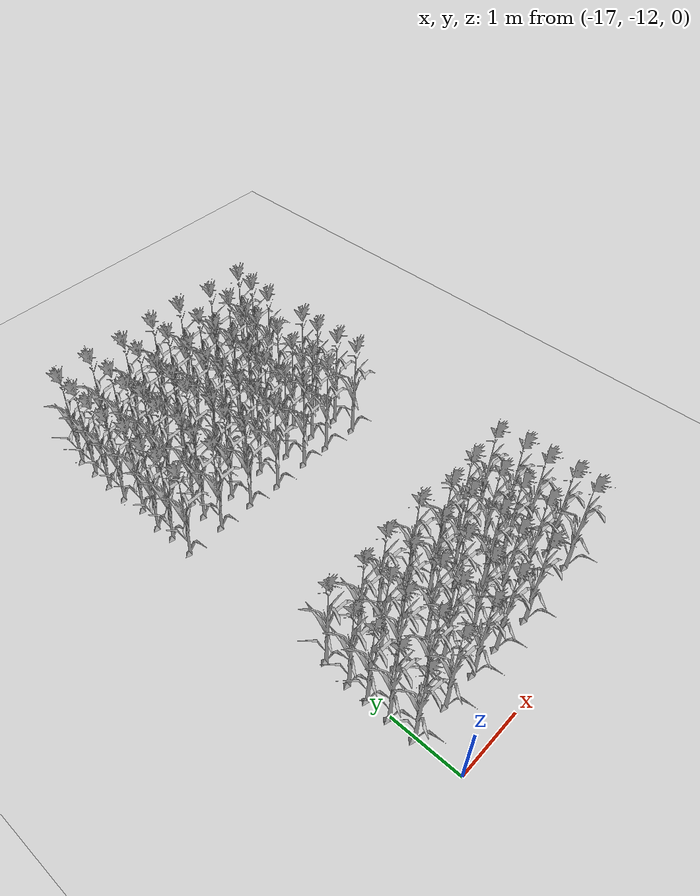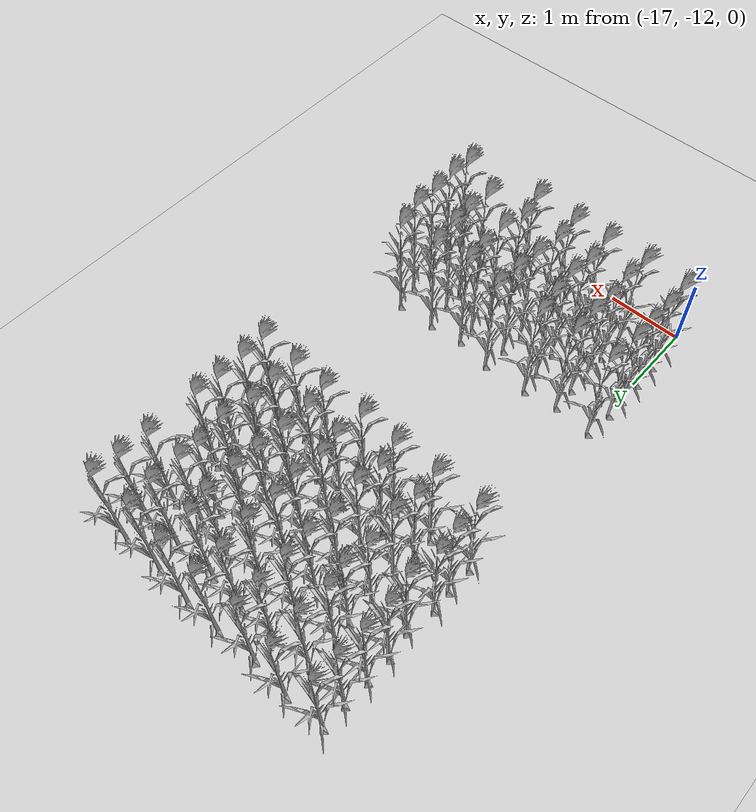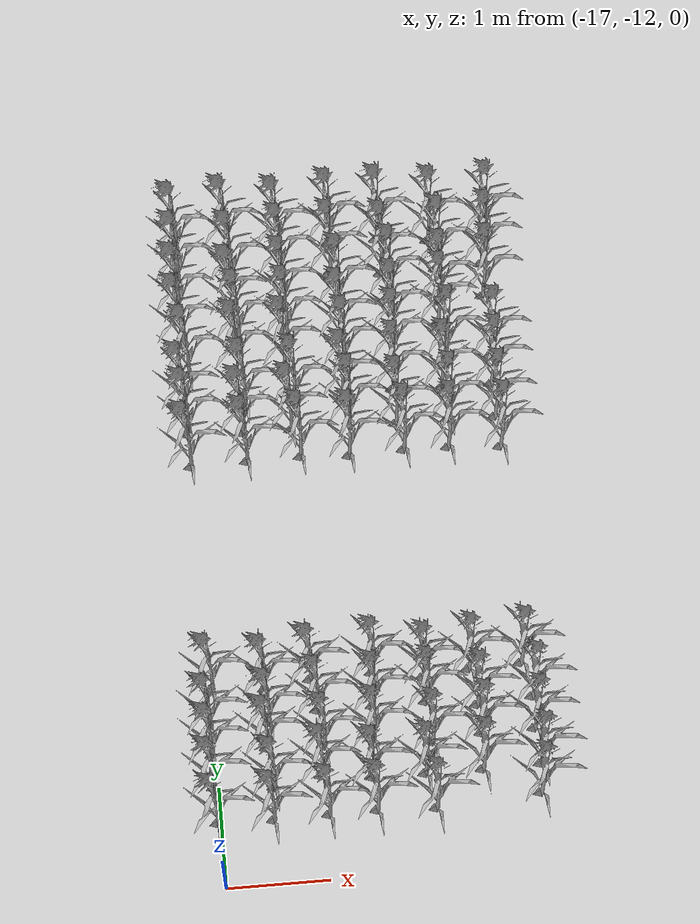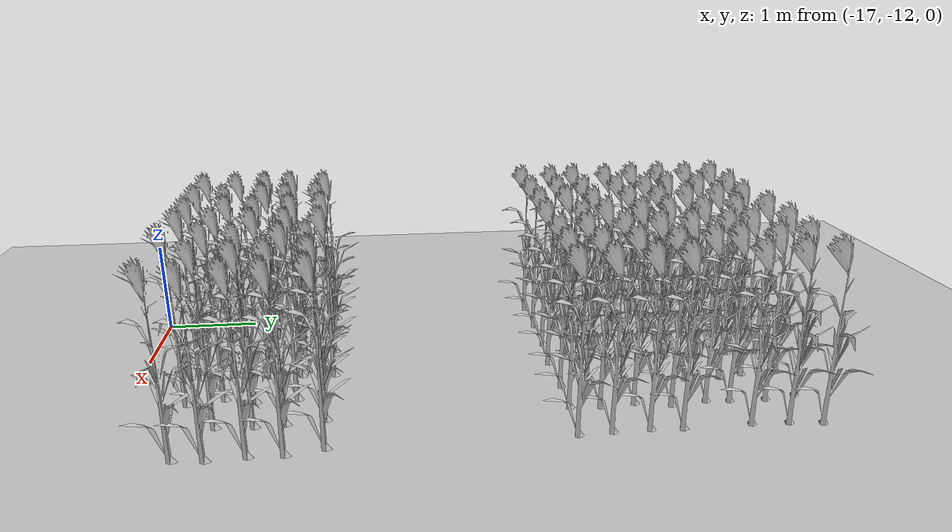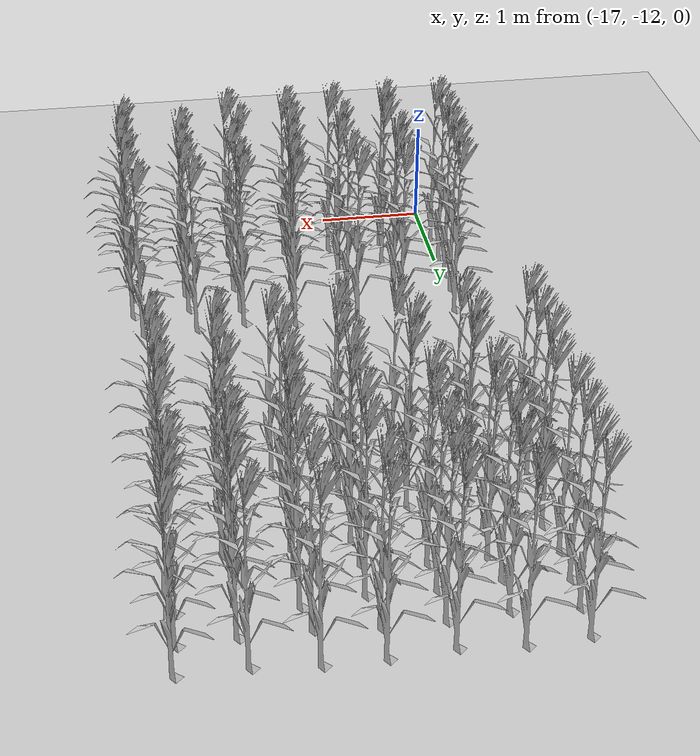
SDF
<sdf version="1.7">
 <world name="farmland_world">
  <model name="ground_plane">
   <static>1</static>
   <link name="link">
    <collision name="collision">
     <geometry><plane><normal>0 0 1</normal><size>40.0 40.0</size></plane></geometry>
     <surface><friction><ode><mu>100</mu><mu2>50</mu2></ode></friction></surface>
    </collision>
    <visual name="visual">
     <cast_shadows>0</cast_shadows>
     <geometry><plane><normal>0 0 1</normal><size>40.0 40.0</size></plane></geometry>
     <material>
      <script><uri>file://media/materials/scripts/gazebo.material</uri><name>Gazebo/Grey</name></script>
     </material>
    </visual>
   </link>
  </model>
  <model name="tree_3_2040">
   <static>1</static>
   <link name="link">
    <collision name="collision">
     <geometry><mesh><uri>model://Corn_low_poly/corn.obj</uri><scale>1 1 1</scale></mesh></geometry>
     <surface><friction><ode><mu>100</mu><mu2>50</mu2></ode></friction></surface>
    </collision>
    <visual name="visual">
     <geometry><mesh><uri>model://Corn_low_poly/corn.obj</uri><scale>1 1 1</scale></mesh></geometry>
    </visual>
   </link>
   <pose>-13.861389295555323 -11.006066772942393 0 0 0 0</pose>
  </model>
  <model name="tree_3_2041">
   <static>1</static>
   <link name="link">
    <collision name="collision">
     <geometry><mesh><uri>model://Corn_low_poly/corn.obj</uri><scale>1 1 1</scale></mesh></geometry>
     <surface><friction><ode><mu>100</mu><mu2>50</mu2></ode></friction></surface>
    </collision>
    <visual name="visual">
     <geometry><mesh><uri>model://Corn_low_poly/corn.obj</uri><scale>1 1 1</scale></mesh></geometry>
    </visual>
   </link>
   <pose>-14.42685267311705 -11.016975568461342 0 0 0 0</pose>
  </model>
  <model name="tree_3_2042">
   <static>1</static>
   <link name="link">
    <collision name="collision">
     <geometry><mesh><uri>model://Corn_low_poly/corn.obj</uri><scale>1 1 1</scale></mesh></geometry>
     <surface><friction><ode><mu>100</mu><mu2>50</mu2></ode></friction></surface>
    </collision>
    <visual name="visual">
     <geometry><mesh><uri>model://Corn_low_poly/corn.obj</uri><scale>1 1 1</scale></mesh></geometry>
    </visual>
   </link>
   <pose>-14.984664853586196 -11.013560077134958 0 0 0 0</pose>
  </model>
  <model name="tree_3_2043">
   <static>1</static>
   <link name="link">
    <collision name="collision">
     <geometry><mesh><uri>model://Corn_low_poly/corn.obj</uri><scale>1 1 1</scale></mesh></geometry>
     <surface><friction><ode><mu>100</mu><mu2>50</mu2></ode></friction></surface>
    </collision>
    <visual name="visual">
     <geometry><mesh><uri>model://Corn_low_poly/corn.obj</uri><scale>1 1 1</scale></mesh></geometry>
    </visual>
   </link>
   <pose>-15.502978542331613 -11.006497961540857 0 0 0 0</pose>
  </model>
  <model name="tree_3_2044">
   <static>1</static>
   <link name="link">
    <collision name="collision">
     <geometry><mesh><uri>model://Corn_low_poly/corn.obj</uri><scale>1 1 1</scale></mesh></geometry>
     <surface><friction><ode><mu>100</mu><mu2>50</mu2></ode></friction></surface>
    </collision>
    <visual name="visual">
     <geometry><mesh><uri>model://Corn_low_poly/corn.obj</uri><scale>1 1 1</scale></mesh></geometry>
    </visual>
   </link>
   <pose>-15.985721734069857 -10.952990888706326 0 0 0 0</pose>
  </model>
  <model name="tree_3_2045">
   <static>1</static>
   <link name="link">
    <collision name="collision">
     <geometry><mesh><uri>model://Corn_low_poly/corn.obj</uri><scale>1 1 1</scale></mesh></geometry>
     <surface><friction><ode><mu>100</mu><mu2>50</mu2></ode></friction></surface>
    </collision>
    <visual name="visual">
     <geometry><mesh><uri>model://Corn_low_poly/corn.obj</uri><scale>1 1 1</scale></mesh></geometry>
    </visual>
   </link>
   <pose>-16.44725447129191 -11.033640916818305 0 0 0 0</pose>
  </model>
  <model name="tree_3_2046">
   <static>1</static>
   <link name="link">
    <collision name="collision">
     <geometry><mesh><uri>model://Corn_low_poly/corn.obj</uri><scale>1 1 1</scale></mesh></geometry>
     <surface><friction><ode><mu>100</mu><mu2>50</mu2></ode></friction></surface>
    </collision>
    <visual name="visual">
     <geometry><mesh><uri>model://Corn_low_poly/corn.obj</uri><scale>1 1 1</scale></mesh></geometry>
    </visual>
   </link>
   <pose>-17.028249268814733 -10.988336016532802 0 0 0 0</pose>
  </model>
  <model name="tree_3_2074">
   <static>1</static>
   <link name="link">
    <collision name="collision">
     <geometry><mesh><uri>model://Corn_low_poly/corn.obj</uri><scale>1 1 1</scale></mesh></geometry>
     <surface><friction><ode><mu>100</mu><mu2>50</mu2></ode></friction></surface>
    </collision>
    <visual name="visual">
     <geometry><mesh><uri>model://Corn_low_poly/corn.obj</uri><scale>1 1 1</scale></mesh></geometry>
    </visual>
   </link>
   <pose>-13.890666893859695 -11.295610780901203 0 0 0 0</pose>
  </model>
  <model name="tree_3_2076">
   <static>1</static>
   <link name="link">
    <collision name="collision">
     <geometry><mesh><uri>model://Corn_low_poly/corn.obj</uri><scale>1 1 1</scale></mesh></geometry>
     <surface><friction><ode><mu>100</mu><mu2>50</mu2></ode></friction></surface>
    </collision>
    <visual name="visual">
     <geometry><mesh><uri>model://Corn_low_poly/corn.obj</uri><scale>1 1 1</scale></mesh></geometry>
    </visual>
   </link>
   <pose>-14.907526392758443 -11.36635602244949 0 0 0 0</pose>
  </model>
  <model name="tree_3_2077">
   <static>1</static>
   <link name="link">
    <collision name="collision">
     <geometry><mesh><uri>model://Corn_low_poly/corn.obj</uri><scale>1 1 1</scale></mesh></geometry>
     <surface><friction><ode><mu>100</mu><mu2>50</mu2></ode></friction></surface>
    </collision>
    <visual name="visual">
     <geometry><mesh><uri>model://Corn_low_poly/corn.obj</uri><scale>1 1 1</scale></mesh></geometry>
    </visual>
   </link>
   <pose>-15.478668211523798 -11.33993258271726 0 0 0 0</pose>
  </model>
  <model name="tree_3_2078">
   <static>1</static>
   <link name="link">
    <collision name="collision">
     <geometry><mesh><uri>model://Corn_low_poly/corn.obj</uri><scale>1 1 1</scale></mesh></geometry>
     <surface><friction><ode><mu>100</mu><mu2>50</mu2></ode></friction></surface>
    </collision>
    <visual name="visual">
     <geometry><mesh><uri>model://Corn_low_poly/corn.obj</uri><scale>1 1 1</scale></mesh></geometry>
    </visual>
   </link>
   <pose>-15.94294663232169 -11.345750835775325 0 0 0 0</pose>
  </model>
  <model name="tree_3_2079">
   <static>1</static>
   <link name="link">
    <collision name="collision">
     <geometry><mesh><uri>model://Corn_low_poly/corn.obj</uri><scale>1 1 1</scale></mesh></geometry>
     <surface><friction><ode><mu>100</mu><mu2>50</mu2></ode></friction></surface>
    </collision>
    <visual name="visual">
     <geometry><mesh><uri>model://Corn_low_poly/corn.obj</uri><scale>1 1 1</scale></mesh></geometry>
    </visual>
   </link>
   <pose>-16.47678042322141 -11.355880029867416 0 0 0 0</pose>
  </model>
  <model name="tree_3_2080">
   <static>1</static>
   <link name="link">
    <collision name="collision">
     <geometry><mesh><uri>model://Corn_low_poly/corn.obj</uri><scale>1 1 1</scale></mesh></geometry>
     <surface><friction><ode><mu>100</mu><mu2>50</mu2></ode></friction></surface>
    </collision>
    <visual name="visual">
     <geometry><mesh><uri>model://Corn_low_poly/corn.obj</uri><scale>1 1 1</scale></mesh></geometry>
    </visual>
   </link>
   <pose>-17.019537868486335 -11.343949888093178 0 0 0 0</pose>
  </model>
  <model name="tree_3_2142">
   <static>1</static>
   <link name="link">
    <collision name="collision">
     <geometry><mesh><uri>model://Corn_low_poly/corn.obj</uri><scale>1 1 1</scale></mesh></geometry>
     <surface><friction><ode><mu>100</mu><mu2>50</mu2></ode></friction></surface>
    </collision>
    <visual name="visual">
     <geometry><mesh><uri>model://Corn_low_poly/corn.obj</uri><scale>1 1 1</scale></mesh></geometry>
    </visual>
   </link>
   <pose>-13.952698420597734 -9.971858872984631 0 0 0 0</pose>
  </model>
  <model name="tree_3_2143">
   <static>1</static>
   <link name="link">
    <collision name="collision">
     <geometry><mesh><uri>model://Corn_low_poly/corn.obj</uri><scale>1 1 1</scale></mesh></geometry>
     <surface><friction><ode><mu>100</mu><mu2>50</mu2></ode></friction></surface>
    </collision>
    <visual name="visual">
     <geometry><mesh><uri>model://Corn_low_poly/corn.obj</uri><scale>1 1 1</scale></mesh></geometry>
    </visual>
   </link>
   <pose>-14.466243059160288 -9.991863412689252 0 0 0 0</pose>
  </model>
  <model name="tree_3_2144">
   <static>1</static>
   <link name="link">
    <collision name="collision">
     <geometry><mesh><uri>model://Corn_low_poly/corn.obj</uri><scale>1 1 1</scale></mesh></geometry>
     <surface><friction><ode><mu>100</mu><mu2>50</mu2></ode></friction></surface>
    </collision>
    <visual name="visual">
     <geometry><mesh><uri>model://Corn_low_poly/corn.obj</uri><scale>1 1 1</scale></mesh></geometry>
    </visual>
   </link>
   <pose>-14.924871572818496 -10.0414902841096 0 0 0 0</pose>
  </model>
  <model name="tree_3_2145">
   <static>1</static>
   <link name="link">
    <collision name="collision">
     <geometry><mesh><uri>model://Corn_low_poly/corn.obj</uri><scale>1 1 1</scale></mesh></geometry>
     <surface><friction><ode><mu>100</mu><mu2>50</mu2></ode></friction></surface>
    </collision>
    <visual name="visual">
     <geometry><mesh><uri>model://Corn_low_poly/corn.obj</uri><scale>1 1 1</scale></mesh></geometry>
    </visual>
   </link>
   <pose>-15.413451948861685 -9.95397579605954 0 0 0 0</pose>
  </model>
  <model name="tree_3_2146">
   <static>1</static>
   <link name="link">
    <collision name="collision">
     <geometry><mesh><uri>model://Corn_low_poly/corn.obj</uri><scale>1 1 1</scale></mesh></geometry>
     <surface><friction><ode><mu>100</mu><mu2>50</mu2></ode></friction></surface>
    </collision>
    <visual name="visual">
     <geometry><mesh><uri>model://Corn_low_poly/corn.obj</uri><scale>1 1 1</scale></mesh></geometry>
    </visual>
   </link>
   <pose>-16.019647574451376 -9.970663126248787 0 0 0 0</pose>
  </model>
  <model name="tree_3_2147">
   <static>1</static>
   <link name="link">
    <collision name="collision">
     <geometry><mesh><uri>model://Corn_low_poly/corn.obj</uri><scale>1 1 1</scale></mesh></geometry>
     <surface><friction><ode><mu>100</mu><mu2>50</mu2></ode></friction></surface>
    </collision>
    <visual name="visual">
     <geometry><mesh><uri>model://Corn_low_poly/corn.obj</uri><scale>1 1 1</scale></mesh></geometry>
    </visual>
   </link>
   <pose>-16.467114263920536 -10.036933781445951 0 0 0 0</pose>
  </model>
  <model name="tree_3_2148">
   <static>1</static>
   <link name="link">
    <collision name="collision">
     <geometry><mesh><uri>model://Corn_low_poly/corn.obj</uri><scale>1 1 1</scale></mesh></geometry>
     <surface><friction><ode><mu>100</mu><mu2>50</mu2></ode></friction></surface>
    </collision>
    <visual name="visual">
     <geometry><mesh><uri>model://Corn_low_poly/corn.obj</uri><scale>1 1 1</scale></mesh></geometry>
    </visual>
   </link>
   <pose>-16.97859842859563 -9.989118121141257 0 0 0 0</pose>
  </model>
  <model name="tree_3_2176">
   <static>1</static>
   <link name="link">
    <collision name="collision">
     <geometry><mesh><uri>model://Corn_low_poly/corn.obj</uri><scale>1 1 1</scale></mesh></geometry>
     <surface><friction><ode><mu>100</mu><mu2>50</mu2></ode></friction></surface>
    </collision>
    <visual name="visual">
     <geometry><mesh><uri>model://Corn_low_poly/corn.obj</uri><scale>1 1 1</scale></mesh></geometry>
    </visual>
   </link>
   <pose>-13.874962286019914 -10.322169741107665 0 0 0 0</pose>
  </model>
  <model name="tree_3_2177">
   <static>1</static>
   <link name="link">
    <collision name="collision">
     <geometry><mesh><uri>model://Corn_low_poly/corn.obj</uri><scale>1 1 1</scale></mesh></geometry>
     <surface><friction><ode><mu>100</mu><mu2>50</mu2></ode></friction></surface>
    </collision>
    <visual name="visual">
     <geometry><mesh><uri>model://Corn_low_poly/corn.obj</uri><scale>1 1 1</scale></mesh></geometry>
    </visual>
   </link>
   <pose>-14.420085120026496 -10.362983866776126 0 0 0 0</pose>
  </model>
  <model name="tree_3_2178">
   <static>1</static>
   <link name="link">
    <collision name="collision">
     <geometry><mesh><uri>model://Corn_low_poly/corn.obj</uri><scale>1 1 1</scale></mesh></geometry>
     <surface><friction><ode><mu>100</mu><mu2>50</mu2></ode></friction></surface>
    </collision>
    <visual name="visual">
     <geometry><mesh><uri>model://Corn_low_poly/corn.obj</uri><scale>1 1 1</scale></mesh></geometry>
    </visual>
   </link>
   <pose>-14.913818616838142 -10.289693840933245 0 0 0 0</pose>
  </model>
  <model name="tree_3_2179">
   <static>1</static>
   <link name="link">
    <collision name="collision">
     <geometry><mesh><uri>model://Corn_low_poly/corn.obj</uri><scale>1 1 1</scale></mesh></geometry>
     <surface><friction><ode><mu>100</mu><mu2>50</mu2></ode></friction></surface>
    </collision>
    <visual name="visual">
     <geometry><mesh><uri>model://Corn_low_poly/corn.obj</uri><scale>1 1 1</scale></mesh></geometry>
    </visual>
   </link>
   <pose>-15.43314286012108 -10.292563843909587 0 0 0 0</pose>
  </model>
  <model name="tree_3_2180">
   <static>1</static>
   <link name="link">
    <collision name="collision">
     <geometry><mesh><uri>model://Corn_low_poly/corn.obj</uri><scale>1 1 1</scale></mesh></geometry>
     <surface><friction><ode><mu>100</mu><mu2>50</mu2></ode></friction></surface>
    </collision>
    <visual name="visual">
     <geometry><mesh><uri>model://Corn_low_poly/corn.obj</uri><scale>1 1 1</scale></mesh></geometry>
    </visual>
   </link>
   <pose>-15.974807561934412 -10.288419714242432 0 0 0 0</pose>
  </model>
  <model name="tree_3_2181">
   <static>1</static>
   <link name="link">
    <collision name="collision">
     <geometry><mesh><uri>model://Corn_low_poly/corn.obj</uri><scale>1 1 1</scale></mesh></geometry>
     <surface><friction><ode><mu>100</mu><mu2>50</mu2></ode></friction></surface>
    </collision>
    <visual name="visual">
     <geometry><mesh><uri>model://Corn_low_poly/corn.obj</uri><scale>1 1 1</scale></mesh></geometry>
    </visual>
   </link>
   <pose>-16.453091820413245 -10.372819391750468 0 0 0 0</pose>
  </model>
  <model name="tree_3_2182">
   <static>1</static>
   <link name="link">
    <collision name="collision">
     <geometry><mesh><uri>model://Corn_low_poly/corn.obj</uri><scale>1 1 1</scale></mesh></geometry>
     <surface><friction><ode><mu>100</mu><mu2>50</mu2></ode></friction></surface>
    </collision>
    <visual name="visual">
     <geometry><mesh><uri>model://Corn_low_poly/corn.obj</uri><scale>1 1 1</scale></mesh></geometry>
    </visual>
   </link>
   <pose>-17.020518568777618 -10.37951647128778 0 0 0 0</pose>
  </model>
  <model name="tree_3_2210">
   <static>1</static>
   <link name="link">
    <collision name="collision">
     <geometry><mesh><uri>model://Corn_low_poly/corn.obj</uri><scale>1 1 1</scale></mesh></geometry>
     <surface><friction><ode><mu>100</mu><mu2>50</mu2></ode></friction></surface>
    </collision>
    <visual name="visual">
     <geometry><mesh><uri>model://Corn_low_poly/corn.obj</uri><scale>1 1 1</scale></mesh></geometry>
    </visual>
   </link>
   <pose>-13.887006472637538 -10.646372009033481 0 0 0 0</pose>
  </model>
  <model name="tree_3_2211">
   <static>1</static>
   <link name="link">
    <collision name="collision">
     <geometry><mesh><uri>model://Corn_low_poly/corn.obj</uri><scale>1 1 1</scale></mesh></geometry>
     <surface><friction><ode><mu>100</mu><mu2>50</mu2></ode></friction></surface>
    </collision>
    <visual name="visual">
     <geometry><mesh><uri>model://Corn_low_poly/corn.obj</uri><scale>1 1 1</scale></mesh></geometry>
    </visual>
   </link>
   <pose>-14.403965079375258 -10.653030346364648 0 0 0 0</pose>
  </model>
  <model name="tree_3_2212">
   <static>1</static>
   <link name="link">
    <collision name="collision">
     <geometry><mesh><uri>model://Corn_low_poly/corn.obj</uri><scale>1 1 1</scale></mesh></geometry>
     <surface><friction><ode><mu>100</mu><mu2>50</mu2></ode></friction></surface>
    </collision>
    <visual name="visual">
     <geometry><mesh><uri>model://Corn_low_poly/corn.obj</uri><scale>1 1 1</scale></mesh></geometry>
    </visual>
   </link>
   <pose>-14.890749612557908 -10.703517361910519 0 0 0 0</pose>
  </model>
  <model name="tree_3_2213">
   <static>1</static>
   <link name="link">
    <collision name="collision">
     <geometry><mesh><uri>model://Corn_low_poly/corn.obj</uri><scale>1 1 1</scale></mesh></geometry>
     <surface><friction><ode><mu>100</mu><mu2>50</mu2></ode></friction></surface>
    </collision>
    <visual name="visual">
     <geometry><mesh><uri>model://Corn_low_poly/corn.obj</uri><scale>1 1 1</scale></mesh></geometry>
    </visual>
   </link>
   <pose>-15.45566366732271 -10.624394285770006 0 0 0 0</pose>
  </model>
  <model name="tree_3_2214">
   <static>1</static>
   <link name="link">
    <collision name="collision">
     <geometry><mesh><uri>model://Corn_low_poly/corn.obj</uri><scale>1 1 1</scale></mesh></geometry>
     <surface><friction><ode><mu>100</mu><mu2>50</mu2></ode></friction></surface>
    </collision>
    <visual name="visual">
     <geometry><mesh><uri>model://Corn_low_poly/corn.obj</uri><scale>1 1 1</scale></mesh></geometry>
    </visual>
   </link>
   <pose>-15.937108696873544 -10.65629357558891 0 0 0 0</pose>
  </model>
  <model name="tree_3_2215">
   <static>1</static>
   <link name="link">
    <collision name="collision">
     <geometry><mesh><uri>model://Corn_low_poly/corn.obj</uri><scale>1 1 1</scale></mesh></geometry>
     <surface><friction><ode><mu>100</mu><mu2>50</mu2></ode></friction></surface>
    </collision>
    <visual name="visual">
     <geometry><mesh><uri>model://Corn_low_poly/corn.obj</uri><scale>1 1 1</scale></mesh></geometry>
    </visual>
   </link>
   <pose>-16.49067657089154 -10.63251876744421 0 0 0 0</pose>
  </model>
  <model name="tree_3_2216">
   <static>1</static>
   <link name="link">
    <collision name="collision">
     <geometry><mesh><uri>model://Corn_low_poly/corn.obj</uri><scale>1 1 1</scale></mesh></geometry>
     <surface><friction><ode><mu>100</mu><mu2>50</mu2></ode></friction></surface>
    </collision>
    <visual name="visual">
     <geometry><mesh><uri>model://Corn_low_poly/corn.obj</uri><scale>1 1 1</scale></mesh></geometry>
    </visual>
   </link>
   <pose>-17.023659672779168 -10.663287181631599 0 0 0 0</pose>
  </model>
  <model name="tree_3_2244">
   <static>1</static>
   <link name="link">
    <collision name="collision">
     <geometry><mesh><uri>model://Corn_low_poly/corn.obj</uri><scale>1 1 1</scale></mesh></geometry>
     <surface><friction><ode><mu>100</mu><mu2>50</mu2></ode></friction></surface>
    </collision>
    <visual name="visual">
     <geometry><mesh><uri>model://Corn_low_poly/corn.obj</uri><scale>1 1 1</scale></mesh></geometry>
    </visual>
   </link>
   <pose>-13.951164779646795 -6.993861504148268 0 0 0 0</pose>
  </model>
  <model name="tree_3_2245">
   <static>1</static>
   <link name="link">
    <collision name="collision">
     <geometry><mesh><uri>model://Corn_low_poly/corn.obj</uri><scale>1 1 1</scale></mesh></geometry>
     <surface><friction><ode><mu>100</mu><mu2>50</mu2></ode></friction></surface>
    </collision>
    <visual name="visual">
     <geometry><mesh><uri>model://Corn_low_poly/corn.obj</uri><scale>1 1 1</scale></mesh></geometry>
    </visual>
   </link>
   <pose>-14.456321078453394 -6.99764469174802 0 0 0 0</pose>
  </model>
  <model name="tree_3_2246">
   <static>1</static>
   <link name="link">
    <collision name="collision">
     <geometry><mesh><uri>model://Corn_low_poly/corn.obj</uri><scale>1 1 1</scale></mesh></geometry>
     <surface><friction><ode><mu>100</mu><mu2>50</mu2></ode></friction></surface>
    </collision>
    <visual name="visual">
     <geometry><mesh><uri>model://Corn_low_poly/corn.obj</uri><scale>1 1 1</scale></mesh></geometry>
    </visual>
   </link>
   <pose>-14.947225602323204 -6.973067761409545 0 0 0 0</pose>
  </model>
  <model name="tree_3_2247">
   <static>1</static>
   <link name="link">
    <collision name="collision">
     <geometry><mesh><uri>model://Corn_low_poly/corn.obj</uri><scale>1 1 1</scale></mesh></geometry>
     <surface><friction><ode><mu>100</mu><mu2>50</mu2></ode></friction></surface>
    </collision>
    <visual name="visual">
     <geometry><mesh><uri>model://Corn_low_poly/corn.obj</uri><scale>1 1 1</scale></mesh></geometry>
    </visual>
   </link>
   <pose>-15.461794139422274 -7.024735371072639 0 0 0 0</pose>
  </model>
  <model name="tree_3_2248">
   <static>1</static>
   <link name="link">
    <collision name="collision">
     <geometry><mesh><uri>model://Corn_low_poly/corn.obj</uri><scale>1 1 1</scale></mesh></geometry>
     <surface><friction><ode><mu>100</mu><mu2>50</mu2></ode></friction></surface>
    </collision>
    <visual name="visual">
     <geometry><mesh><uri>model://Corn_low_poly/corn.obj</uri><scale>1 1 1</scale></mesh></geometry>
    </visual>
   </link>
   <pose>-15.942998863355749 -7.042202841323702 0 0 0 0</pose>
  </model>
  <model name="tree_3_2249">
   <static>1</static>
   <link name="link">
    <collision name="collision">
     <geometry><mesh><uri>model://Corn_low_poly/corn.obj</uri><scale>1 1 1</scale></mesh></geometry>
     <surface><friction><ode><mu>100</mu><mu2>50</mu2></ode></friction></surface>
    </collision>
    <visual name="visual">
     <geometry><mesh><uri>model://Corn_low_poly/corn.obj</uri><scale>1 1 1</scale></mesh></geometry>
    </visual>
   </link>
   <pose>-16.441357648605127 -7.03659596464226 0 0 0 0</pose>
  </model>
  <model name="tree_3_2250">
   <static>1</static>
   <link name="link">
    <collision name="collision">
     <geometry><mesh><uri>model://Corn_low_poly/corn.obj</uri><scale>1 1 1</scale></mesh></geometry>
     <surface><friction><ode><mu>100</mu><mu2>50</mu2></ode></friction></surface>
    </collision>
    <visual name="visual">
     <geometry><mesh><uri>model://Corn_low_poly/corn.obj</uri><scale>1 1 1</scale></mesh></geometry>
    </visual>
   </link>
   <pose>-17.047193564578695 -7.019605284753722 0 0 0 0</pose>
  </model>
  <model name="tree_3_2278">
   <static>1</static>
   <link name="link">
    <collision name="collision">
     <geometry><mesh><uri>model://Corn_low_poly/corn.obj</uri><scale>1 1 1</scale></mesh></geometry>
     <surface><friction><ode><mu>100</mu><mu2>50</mu2></ode></friction></surface>
    </collision>
    <visual name="visual">
     <geometry><mesh><uri>model://Corn_low_poly/corn.obj</uri><scale>1 1 1</scale></mesh></geometry>
    </visual>
   </link>
   <pose>-13.948183304319729 -7.354694077393018 0 0 0 0</pose>
  </model>
  <model name="tree_3_2279">
   <static>1</static>
   <link name="link">
    <collision name="collision">
     <geometry><mesh><uri>model://Corn_low_poly/corn.obj</uri><scale>1 1 1</scale></mesh></geometry>
     <surface><friction><ode><mu>100</mu><mu2>50</mu2></ode></friction></surface>
    </collision>
    <visual name="visual">
     <geometry><mesh><uri>model://Corn_low_poly/corn.obj</uri><scale>1 1 1</scale></mesh></geometry>
    </visual>
   </link>
   <pose>-14.423388080308088 -7.342992412397734 0 0 0 0</pose>
  </model>
  <model name="tree_3_2280">
   <static>1</static>
   <link name="link">
    <collision name="collision">
     <geometry><mesh><uri>model://Corn_low_poly/corn.obj</uri><scale>1 1 1</scale></mesh></geometry>
     <surface><friction><ode><mu>100</mu><mu2>50</mu2></ode></friction></surface>
    </collision>
    <visual name="visual">
     <geometry><mesh><uri>model://Corn_low_poly/corn.obj</uri><scale>1 1 1</scale></mesh></geometry>
    </visual>
   </link>
   <pose>-14.948490487080253 -7.346868445730922 0 0 0 0</pose>
  </model>
  <model name="tree_3_2281">
   <static>1</static>
   <link name="link">
    <collision name="collision">
     <geometry><mesh><uri>model://Corn_low_poly/corn.obj</uri><scale>1 1 1</scale></mesh></geometry>
     <surface><friction><ode><mu>100</mu><mu2>50</mu2></ode></friction></surface>
    </collision>
    <visual name="visual">
     <geometry><mesh><uri>model://Corn_low_poly/corn.obj</uri><scale>1 1 1</scale></mesh></geometry>
    </visual>
   </link>
   <pose>-15.413272612857916 -7.287812258975569 0 0 0 0</pose>
  </model>
  <model name="tree_3_2282">
   <static>1</static>
   <link name="link">
    <collision name="collision">
     <geometry><mesh><uri>model://Corn_low_poly/corn.obj</uri><scale>1 1 1</scale></mesh></geometry>
     <surface><friction><ode><mu>100</mu><mu2>50</mu2></ode></friction></surface>
    </collision>
    <visual name="visual">
     <geometry><mesh><uri>model://Corn_low_poly/corn.obj</uri><scale>1 1 1</scale></mesh></geometry>
    </visual>
   </link>
   <pose>-16.004679489134556 -7.329177109131712 0 0 0 0</pose>
  </model>
  <model name="tree_3_2283">
   <static>1</static>
   <link name="link">
    <collision name="collision">
     <geometry><mesh><uri>model://Corn_low_poly/corn.obj</uri><scale>1 1 1</scale></mesh></geometry>
     <surface><friction><ode><mu>100</mu><mu2>50</mu2></ode></friction></surface>
    </collision>
    <visual name="visual">
     <geometry><mesh><uri>model://Corn_low_poly/corn.obj</uri><scale>1 1 1</scale></mesh></geometry>
    </visual>
   </link>
   <pose>-16.4964703185952 -7.31958642711908 0 0 0 0</pose>
  </model>
  <model name="tree_3_2284">
   <static>1</static>
   <link name="link">
    <collision name="collision">
     <geometry><mesh><uri>model://Corn_low_poly/corn.obj</uri><scale>1 1 1</scale></mesh></geometry>
     <surface><friction><ode><mu>100</mu><mu2>50</mu2></ode></friction></surface>
    </collision>
    <visual name="visual">
     <geometry><mesh><uri>model://Corn_low_poly/corn.obj</uri><scale>1 1 1</scale></mesh></geometry>
    </visual>
   </link>
   <pose>-17.023194866972926 -7.295358356197001 0 0 0 0</pose>
  </model>
  <model name="tree_3_2312">
   <static>1</static>
   <link name="link">
    <collision name="collision">
     <geometry><mesh><uri>model://Corn_low_poly/corn.obj</uri><scale>1 1 1</scale></mesh></geometry>
     <surface><friction><ode><mu>100</mu><mu2>50</mu2></ode></friction></surface>
    </collision>
    <visual name="visual">
     <geometry><mesh><uri>model://Corn_low_poly/corn.obj</uri><scale>1 1 1</scale></mesh></geometry>
    </visual>
   </link>
   <pose>-13.926505014400165 -7.682673740150251 0 0 0 0</pose>
  </model>
  <model name="tree_3_2313">
   <static>1</static>
   <link name="link">
    <collision name="collision">
     <geometry><mesh><uri>model://Corn_low_poly/corn.obj</uri><scale>1 1 1</scale></mesh></geometry>
     <surface><friction><ode><mu>100</mu><mu2>50</mu2></ode></friction></surface>
    </collision>
    <visual name="visual">
     <geometry><mesh><uri>model://Corn_low_poly/corn.obj</uri><scale>1 1 1</scale></mesh></geometry>
    </visual>
   </link>
   <pose>-14.448147626754993 -7.646428276970557 0 0 0 0</pose>
  </model>
  <model name="tree_3_2314">
   <static>1</static>
   <link name="link">
    <collision name="collision">
     <geometry><mesh><uri>model://Corn_low_poly/corn.obj</uri><scale>1 1 1</scale></mesh></geometry>
     <surface><friction><ode><mu>100</mu><mu2>50</mu2></ode></friction></surface>
    </collision>
    <visual name="visual">
     <geometry><mesh><uri>model://Corn_low_poly/corn.obj</uri><scale>1 1 1</scale></mesh></geometry>
    </visual>
   </link>
   <pose>-14.895181479416376 -7.636647580505354 0 0 0 0</pose>
  </model>
  <model name="tree_3_2315">
   <static>1</static>
   <link name="link">
    <collision name="collision">
     <geometry><mesh><uri>model://Corn_low_poly/corn.obj</uri><scale>1 1 1</scale></mesh></geometry>
     <surface><friction><ode><mu>100</mu><mu2>50</mu2></ode></friction></surface>
    </collision>
    <visual name="visual">
     <geometry><mesh><uri>model://Corn_low_poly/corn.obj</uri><scale>1 1 1</scale></mesh></geometry>
    </visual>
   </link>
   <pose>-15.443786971431432 -7.656376302658207 0 0 0 0</pose>
  </model>
  <model name="tree_3_2316">
   <static>1</static>
   <link name="link">
    <collision name="collision">
     <geometry><mesh><uri>model://Corn_low_poly/corn.obj</uri><scale>1 1 1</scale></mesh></geometry>
     <surface><friction><ode><mu>100</mu><mu2>50</mu2></ode></friction></surface>
    </collision>
    <visual name="visual">
     <geometry><mesh><uri>model://Corn_low_poly/corn.obj</uri><scale>1 1 1</scale></mesh></geometry>
    </visual>
   </link>
   <pose>-15.92885665766973 -7.626496955636234 0 0 0 0</pose>
  </model>
  <model name="tree_3_2317">
   <static>1</static>
   <link name="link">
    <collision name="collision">
     <geometry><mesh><uri>model://Corn_low_poly/corn.obj</uri><scale>1 1 1</scale></mesh></geometry>
     <surface><friction><ode><mu>100</mu><mu2>50</mu2></ode></friction></surface>
    </collision>
    <visual name="visual">
     <geometry><mesh><uri>model://Corn_low_poly/corn.obj</uri><scale>1 1 1</scale></mesh></geometry>
    </visual>
   </link>
   <pose>-16.46916230907322 -7.631535219202401 0 0 0 0</pose>
  </model>
  <model name="tree_3_2318">
   <static>1</static>
   <link name="link">
    <collision name="collision">
     <geometry><mesh><uri>model://Corn_low_poly/corn.obj</uri><scale>1 1 1</scale></mesh></geometry>
     <surface><friction><ode><mu>100</mu><mu2>50</mu2></ode></friction></surface>
    </collision>
    <visual name="visual">
     <geometry><mesh><uri>model://Corn_low_poly/corn.obj</uri><scale>1 1 1</scale></mesh></geometry>
    </visual>
   </link>
   <pose>-17.02942639471608 -7.643782216485686 0 0 0 0</pose>
  </model>
  <model name="tree_3_2346">
   <static>1</static>
   <link name="link">
    <collision name="collision">
     <geometry><mesh><uri>model://Corn_low_poly/corn.obj</uri><scale>1 1 1</scale></mesh></geometry>
     <surface><friction><ode><mu>100</mu><mu2>50</mu2></ode></friction></surface>
    </collision>
    <visual name="visual">
     <geometry><mesh><uri>model://Corn_low_poly/corn.obj</uri><scale>1 1 1</scale></mesh></geometry>
    </visual>
   </link>
   <pose>-13.94548014542636 -6.018164438550421 0 0 0 0</pose>
  </model>
  <model name="tree_3_2347">
   <static>1</static>
   <link name="link">
    <collision name="collision">
     <geometry><mesh><uri>model://Corn_low_poly/corn.obj</uri><scale>1 1 1</scale></mesh></geometry>
     <surface><friction><ode><mu>100</mu><mu2>50</mu2></ode></friction></surface>
    </collision>
    <visual name="visual">
     <geometry><mesh><uri>model://Corn_low_poly/corn.obj</uri><scale>1 1 1</scale></mesh></geometry>
    </visual>
   </link>
   <pose>-14.40382870695632 -6.044253252727785 0 0 0 0</pose>
  </model>
  <model name="tree_3_2348">
   <static>1</static>
   <link name="link">
    <collision name="collision">
     <geometry><mesh><uri>model://Corn_low_poly/corn.obj</uri><scale>1 1 1</scale></mesh></geometry>
     <surface><friction><ode><mu>100</mu><mu2>50</mu2></ode></friction></surface>
    </collision>
    <visual name="visual">
     <geometry><mesh><uri>model://Corn_low_poly/corn.obj</uri><scale>1 1 1</scale></mesh></geometry>
    </visual>
   </link>
   <pose>-14.903863735370297 -5.951745630925752 0 0 0 0</pose>
  </model>
  <model name="tree_3_2349">
   <static>1</static>
   <link name="link">
    <collision name="collision">
     <geometry><mesh><uri>model://Corn_low_poly/corn.obj</uri><scale>1 1 1</scale></mesh></geometry>
     <surface><friction><ode><mu>100</mu><mu2>50</mu2></ode></friction></surface>
    </collision>
    <visual name="visual">
     <geometry><mesh><uri>model://Corn_low_poly/corn.obj</uri><scale>1 1 1</scale></mesh></geometry>
    </visual>
   </link>
   <pose>-15.41946857475651 -6.007849495621097 0 0 0 0</pose>
  </model>
  <model name="tree_3_2350">
   <static>1</static>
   <link name="link">
    <collision name="collision">
     <geometry><mesh><uri>model://Corn_low_poly/corn.obj</uri><scale>1 1 1</scale></mesh></geometry>
     <surface><friction><ode><mu>100</mu><mu2>50</mu2></ode></friction></surface>
    </collision>
    <visual name="visual">
     <geometry><mesh><uri>model://Corn_low_poly/corn.obj</uri><scale>1 1 1</scale></mesh></geometry>
    </visual>
   </link>
   <pose>-15.978070218337448 -5.987465003423708 0 0 0 0</pose>
  </model>
  <model name="tree_3_2351">
   <static>1</static>
   <link name="link">
    <collision name="collision">
     <geometry><mesh><uri>model://Corn_low_poly/corn.obj</uri><scale>1 1 1</scale></mesh></geometry>
     <surface><friction><ode><mu>100</mu><mu2>50</mu2></ode></friction></surface>
    </collision>
    <visual name="visual">
     <geometry><mesh><uri>model://Corn_low_poly/corn.obj</uri><scale>1 1 1</scale></mesh></geometry>
    </visual>
   </link>
   <pose>-16.502700722491248 -6.036426752905903 0 0 0 0</pose>
  </model>
  <model name="tree_3_2352">
   <static>1</static>
   <link name="link">
    <collision name="collision">
     <geometry><mesh><uri>model://Corn_low_poly/corn.obj</uri><scale>1 1 1</scale></mesh></geometry>
     <surface><friction><ode><mu>100</mu><mu2>50</mu2></ode></friction></surface>
    </collision>
    <visual name="visual">
     <geometry><mesh><uri>model://Corn_low_poly/corn.obj</uri><scale>1 1 1</scale></mesh></geometry>
    </visual>
   </link>
   <pose>-17.03455211512053 -5.964708383998369 0 0 0 0</pose>
  </model>
  <model name="tree_3_2381">
   <static>1</static>
   <link name="link">
    <collision name="collision">
     <geometry><mesh><uri>model://Corn_low_poly/corn.obj</uri><scale>1 1 1</scale></mesh></geometry>
     <surface><friction><ode><mu>100</mu><mu2>50</mu2></ode></friction></surface>
    </collision>
    <visual name="visual">
     <geometry><mesh><uri>model://Corn_low_poly/corn.obj</uri><scale>1 1 1</scale></mesh></geometry>
    </visual>
   </link>
   <pose>-14.425709966211405 -6.280586675196834 0 0 0 0</pose>
  </model>
  <model name="tree_3_2382">
   <static>1</static>
   <link name="link">
    <collision name="collision">
     <geometry><mesh><uri>model://Corn_low_poly/corn.obj</uri><scale>1 1 1</scale></mesh></geometry>
     <surface><friction><ode><mu>100</mu><mu2>50</mu2></ode></friction></surface>
    </collision>
    <visual name="visual">
     <geometry><mesh><uri>model://Corn_low_poly/corn.obj</uri><scale>1 1 1</scale></mesh></geometry>
    </visual>
   </link>
   <pose>-14.90504039552183 -6.321575281561495 0 0 0 0</pose>
  </model>
  <model name="tree_3_2383">
   <static>1</static>
   <link name="link">
    <collision name="collision">
     <geometry><mesh><uri>model://Corn_low_poly/corn.obj</uri><scale>1 1 1</scale></mesh></geometry>
     <surface><friction><ode><mu>100</mu><mu2>50</mu2></ode></friction></surface>
    </collision>
    <visual name="visual">
     <geometry><mesh><uri>model://Corn_low_poly/corn.obj</uri><scale>1 1 1</scale></mesh></geometry>
    </visual>
   </link>
   <pose>-15.440753755615807 -6.373650532895755 0 0 0 0</pose>
  </model>
  <model name="tree_3_2384">
   <static>1</static>
   <link name="link">
    <collision name="collision">
     <geometry><mesh><uri>model://Corn_low_poly/corn.obj</uri><scale>1 1 1</scale></mesh></geometry>
     <surface><friction><ode><mu>100</mu><mu2>50</mu2></ode></friction></surface>
    </collision>
    <visual name="visual">
     <geometry><mesh><uri>model://Corn_low_poly/corn.obj</uri><scale>1 1 1</scale></mesh></geometry>
    </visual>
   </link>
   <pose>-15.967647692864734 -6.303916293050568 0 0 0 0</pose>
  </model>
  <model name="tree_3_2385">
   <static>1</static>
   <link name="link">
    <collision name="collision">
     <geometry><mesh><uri>model://Corn_low_poly/corn.obj</uri><scale>1 1 1</scale></mesh></geometry>
     <surface><friction><ode><mu>100</mu><mu2>50</mu2></ode></friction></surface>
    </collision>
    <visual name="visual">
     <geometry><mesh><uri>model://Corn_low_poly/corn.obj</uri><scale>1 1 1</scale></mesh></geometry>
    </visual>
   </link>
   <pose>-16.452488326409153 -6.302659369913874 0 0 0 0</pose>
  </model>
  <model name="tree_3_2386">
   <static>1</static>
   <link name="link">
    <collision name="collision">
     <geometry><mesh><uri>model://Corn_low_poly/corn.obj</uri><scale>1 1 1</scale></mesh></geometry>
     <surface><friction><ode><mu>100</mu><mu2>50</mu2></ode></friction></surface>
    </collision>
    <visual name="visual">
     <geometry><mesh><uri>model://Corn_low_poly/corn.obj</uri><scale>1 1 1</scale></mesh></geometry>
    </visual>
   </link>
   <pose>-17.039077666698653 -6.300312747635775 0 0 0 0</pose>
  </model>
  <model name="tree_3_2414">
   <static>1</static>
   <link name="link">
    <collision name="collision">
     <geometry><mesh><uri>model://Corn_low_poly/corn.obj</uri><scale>1 1 1</scale></mesh></geometry>
     <surface><friction><ode><mu>100</mu><mu2>50</mu2></ode></friction></surface>
    </collision>
    <visual name="visual">
     <geometry><mesh><uri>model://Corn_low_poly/corn.obj</uri><scale>1 1 1</scale></mesh></geometry>
    </visual>
   </link>
   <pose>-13.931696998053779 -6.686417445394685 0 0 0 0</pose>
  </model>
  <model name="tree_3_2415">
   <static>1</static>
   <link name="link">
    <collision name="collision">
     <geometry><mesh><uri>model://Corn_low_poly/corn.obj</uri><scale>1 1 1</scale></mesh></geometry>
     <surface><friction><ode><mu>100</mu><mu2>50</mu2></ode></friction></surface>
    </collision>
    <visual name="visual">
     <geometry><mesh><uri>model://Corn_low_poly/corn.obj</uri><scale>1 1 1</scale></mesh></geometry>
    </visual>
   </link>
   <pose>-14.37904884115407 -6.644905790736763 0 0 0 0</pose>
  </model>
  <model name="tree_3_2416">
   <static>1</static>
   <link name="link">
    <collision name="collision">
     <geometry><mesh><uri>model://Corn_low_poly/corn.obj</uri><scale>1 1 1</scale></mesh></geometry>
     <surface><friction><ode><mu>100</mu><mu2>50</mu2></ode></friction></surface>
    </collision>
    <visual name="visual">
     <geometry><mesh><uri>model://Corn_low_poly/corn.obj</uri><scale>1 1 1</scale></mesh></geometry>
    </visual>
   </link>
   <pose>-14.924936109375007 -6.632617898211495 0 0 0 0</pose>
  </model>
  <model name="tree_3_2417">
   <static>1</static>
   <link name="link">
    <collision name="collision">
     <geometry><mesh><uri>model://Corn_low_poly/corn.obj</uri><scale>1 1 1</scale></mesh></geometry>
     <surface><friction><ode><mu>100</mu><mu2>50</mu2></ode></friction></surface>
    </collision>
    <visual name="visual">
     <geometry><mesh><uri>model://Corn_low_poly/corn.obj</uri><scale>1 1 1</scale></mesh></geometry>
    </visual>
   </link>
   <pose>-15.417107201316968 -6.673397212311817 0 0 0 0</pose>
  </model>
  <model name="tree_3_2418">
   <static>1</static>
   <link name="link">
    <collision name="collision">
     <geometry><mesh><uri>model://Corn_low_poly/corn.obj</uri><scale>1 1 1</scale></mesh></geometry>
     <surface><friction><ode><mu>100</mu><mu2>50</mu2></ode></friction></surface>
    </collision>
    <visual name="visual">
     <geometry><mesh><uri>model://Corn_low_poly/corn.obj</uri><scale>1 1 1</scale></mesh></geometry>
    </visual>
   </link>
   <pose>-16.01320583980215 -6.623431404188485 0 0 0 0</pose>
  </model>
  <model name="tree_3_2419">
   <static>1</static>
   <link name="link">
    <collision name="collision">
     <geometry><mesh><uri>model://Corn_low_poly/corn.obj</uri><scale>1 1 1</scale></mesh></geometry>
     <surface><friction><ode><mu>100</mu><mu2>50</mu2></ode></friction></surface>
    </collision>
    <visual name="visual">
     <geometry><mesh><uri>model://Corn_low_poly/corn.obj</uri><scale>1 1 1</scale></mesh></geometry>
    </visual>
   </link>
   <pose>-16.491095058033483 -6.625427048841425 0 0 0 0</pose>
  </model>
  <model name="tree_3_2420">
   <static>1</static>
   <link name="link">
    <collision name="collision">
     <geometry><mesh><uri>model://Corn_low_poly/corn.obj</uri><scale>1 1 1</scale></mesh></geometry>
     <surface><friction><ode><mu>100</mu><mu2>50</mu2></ode></friction></surface>
    </collision>
    <visual name="visual">
     <geometry><mesh><uri>model://Corn_low_poly/corn.obj</uri><scale>1 1 1</scale></mesh></geometry>
    </visual>
   </link>
   <pose>-16.983675482913025 -6.637748481458052 0 0 0 0</pose>
  </model>
  <model name="tree_3_2482">
   <static>1</static>
   <link name="link">
    <collision name="collision">
     <geometry><mesh><uri>model://Corn_low_poly/corn.obj</uri><scale>1 1 1</scale></mesh></geometry>
     <surface><friction><ode><mu>100</mu><mu2>50</mu2></ode></friction></surface>
    </collision>
    <visual name="visual">
     <geometry><mesh><uri>model://Corn_low_poly/corn.obj</uri><scale>1 1 1</scale></mesh></geometry>
    </visual>
   </link>
   <pose>-13.885678742914438 -5.340259312256166 0 0 0 0</pose>
  </model>
  <model name="tree_3_2483">
   <static>1</static>
   <link name="link">
    <collision name="collision">
     <geometry><mesh><uri>model://Corn_low_poly/corn.obj</uri><scale>1 1 1</scale></mesh></geometry>
     <surface><friction><ode><mu>100</mu><mu2>50</mu2></ode></friction></surface>
    </collision>
    <visual name="visual">
     <geometry><mesh><uri>model://Corn_low_poly/corn.obj</uri><scale>1 1 1</scale></mesh></geometry>
    </visual>
   </link>
   <pose>-14.447380866481895 -5.350056646067686 0 0 0 0</pose>
  </model>
  <model name="tree_3_2484">
   <static>1</static>
   <link name="link">
    <collision name="collision">
     <geometry><mesh><uri>model://Corn_low_poly/corn.obj</uri><scale>1 1 1</scale></mesh></geometry>
     <surface><friction><ode><mu>100</mu><mu2>50</mu2></ode></friction></surface>
    </collision>
    <visual name="visual">
     <geometry><mesh><uri>model://Corn_low_poly/corn.obj</uri><scale>1 1 1</scale></mesh></geometry>
    </visual>
   </link>
   <pose>-14.973200530902906 -5.295380948402412 0 0 0 0</pose>
  </model>
  <model name="tree_3_2485">
   <static>1</static>
   <link name="link">
    <collision name="collision">
     <geometry><mesh><uri>model://Corn_low_poly/corn.obj</uri><scale>1 1 1</scale></mesh></geometry>
     <surface><friction><ode><mu>100</mu><mu2>50</mu2></ode></friction></surface>
    </collision>
    <visual name="visual">
     <geometry><mesh><uri>model://Corn_low_poly/corn.obj</uri><scale>1 1 1</scale></mesh></geometry>
    </visual>
   </link>
   <pose>-15.463319944962194 -5.295246167029384 0 0 0 0</pose>
  </model>
  <model name="tree_3_2486">
   <static>1</static>
   <link name="link">
    <collision name="collision">
     <geometry><mesh><uri>model://Corn_low_poly/corn.obj</uri><scale>1 1 1</scale></mesh></geometry>
     <surface><friction><ode><mu>100</mu><mu2>50</mu2></ode></friction></surface>
    </collision>
    <visual name="visual">
     <geometry><mesh><uri>model://Corn_low_poly/corn.obj</uri><scale>1 1 1</scale></mesh></geometry>
    </visual>
   </link>
   <pose>-15.994383048510509 -5.333777032919522 0 0 0 0</pose>
  </model>
  <model name="tree_3_2487">
   <static>1</static>
   <link name="link">
    <collision name="collision">
     <geometry><mesh><uri>model://Corn_low_poly/corn.obj</uri><scale>1 1 1</scale></mesh></geometry>
     <surface><friction><ode><mu>100</mu><mu2>50</mu2></ode></friction></surface>
    </collision>
    <visual name="visual">
     <geometry><mesh><uri>model://Corn_low_poly/corn.obj</uri><scale>1 1 1</scale></mesh></geometry>
    </visual>
   </link>
   <pose>-16.510484681866135 -5.282530488495813 0 0 0 0</pose>
  </model>
  <model name="tree_3_2488">
   <static>1</static>
   <link name="link">
    <collision name="collision">
     <geometry><mesh><uri>model://Corn_low_poly/corn.obj</uri><scale>1 1 1</scale></mesh></geometry>
     <surface><friction><ode><mu>100</mu><mu2>50</mu2></ode></friction></surface>
    </collision>
    <visual name="visual">
     <geometry><mesh><uri>model://Corn_low_poly/corn.obj</uri><scale>1 1 1</scale></mesh></geometry>
    </visual>
   </link>
   <pose>-17.01463638209786 -5.311826080990166 0 0 0 0</pose>
  </model>
  <model name="tree_3_2516">
   <static>1</static>
   <link name="link">
    <collision name="collision">
     <geometry><mesh><uri>model://Corn_low_poly/corn.obj</uri><scale>1 1 1</scale></mesh></geometry>
     <surface><friction><ode><mu>100</mu><mu2>50</mu2></ode></friction></surface>
    </collision>
    <visual name="visual">
     <geometry><mesh><uri>model://Corn_low_poly/corn.obj</uri><scale>1 1 1</scale></mesh></geometry>
    </visual>
   </link>
   <pose>-13.92442492365601 -5.659048975045817 0 0 0 0</pose>
  </model>
  <model name="tree_3_2517">
   <static>1</static>
   <link name="link">
    <collision name="collision">
     <geometry><mesh><uri>model://Corn_low_poly/corn.obj</uri><scale>1 1 1</scale></mesh></geometry>
     <surface><friction><ode><mu>100</mu><mu2>50</mu2></ode></friction></surface>
    </collision>
    <visual name="visual">
     <geometry><mesh><uri>model://Corn_low_poly/corn.obj</uri><scale>1 1 1</scale></mesh></geometry>
    </visual>
   </link>
   <pose>-14.391677550662518 -5.679107806038307 0 0 0 0</pose>
  </model>
  <model name="tree_3_2518">
   <static>1</static>
   <link name="link">
    <collision name="collision">
     <geometry><mesh><uri>model://Corn_low_poly/corn.obj</uri><scale>1 1 1</scale></mesh></geometry>
     <surface><friction><ode><mu>100</mu><mu2>50</mu2></ode></friction></surface>
    </collision>
    <visual name="visual">
     <geometry><mesh><uri>model://Corn_low_poly/corn.obj</uri><scale>1 1 1</scale></mesh></geometry>
    </visual>
   </link>
   <pose>-14.95891894811525 -5.6853615639726085 0 0 0 0</pose>
  </model>
  <model name="tree_3_2519">
   <static>1</static>
   <link name="link">
    <collision name="collision">
     <geometry><mesh><uri>model://Corn_low_poly/corn.obj</uri><scale>1 1 1</scale></mesh></geometry>
     <surface><friction><ode><mu>100</mu><mu2>50</mu2></ode></friction></surface>
    </collision>
    <visual name="visual">
     <geometry><mesh><uri>model://Corn_low_poly/corn.obj</uri><scale>1 1 1</scale></mesh></geometry>
    </visual>
   </link>
   <pose>-15.474417217598031 -5.632274527031954 0 0 0 0</pose>
  </model>
  <model name="tree_3_2520">
   <static>1</static>
   <link name="link">
    <collision name="collision">
     <geometry><mesh><uri>model://Corn_low_poly/corn.obj</uri><scale>1 1 1</scale></mesh></geometry>
     <surface><friction><ode><mu>100</mu><mu2>50</mu2></ode></friction></surface>
    </collision>
    <visual name="visual">
     <geometry><mesh><uri>model://Corn_low_poly/corn.obj</uri><scale>1 1 1</scale></mesh></geometry>
    </visual>
   </link>
   <pose>-15.977584323729655 -5.632418939292144 0 0 0 0</pose>
  </model>
  <model name="tree_3_2521">
   <static>1</static>
   <link name="link">
    <collision name="collision">
     <geometry><mesh><uri>model://Corn_low_poly/corn.obj</uri><scale>1 1 1</scale></mesh></geometry>
     <surface><friction><ode><mu>100</mu><mu2>50</mu2></ode></friction></surface>
    </collision>
    <visual name="visual">
     <geometry><mesh><uri>model://Corn_low_poly/corn.obj</uri><scale>1 1 1</scale></mesh></geometry>
    </visual>
   </link>
   <pose>-16.477960550295915 -5.6700318742188 0 0 0 0</pose>
  </model>
  <model name="tree_3_2522">
   <static>1</static>
   <link name="link">
    <collision name="collision">
     <geometry><mesh><uri>model://Corn_low_poly/corn.obj</uri><scale>1 1 1</scale></mesh></geometry>
     <surface><friction><ode><mu>100</mu><mu2>50</mu2></ode></friction></surface>
    </collision>
    <visual name="visual">
     <geometry><mesh><uri>model://Corn_low_poly/corn.obj</uri><scale>1 1 1</scale></mesh></geometry>
    </visual>
   </link>
   <pose>-17.020441896785787 -5.629435579675981 0 0 0 0</pose>
  </model>
 </world>
</sdf>
